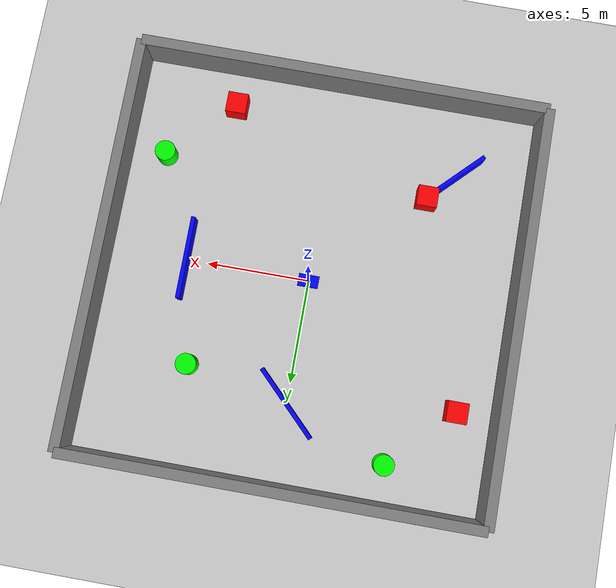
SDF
<?xml version="1.0"?>
<sdf version="1.10">
    <world name="car_world">
        <physics name="1ms" type="ignored">
            <max_step_size>0.001</max_step_size>
            <real_time_factor>1.0</real_time_factor>
        </physics>
        <plugin
            filename="gz-sim-physics-system"
            name="gz::sim::systems::Physics">
        </plugin>
        <plugin
            filename="gz-sim-user-commands-system"
            name="gz::sim::systems::UserCommands">
        </plugin>
        <plugin
            filename="gz-sim-scene-broadcaster-system"
            name="gz::sim::systems::SceneBroadcaster">
        </plugin>
        <plugin
            filename="gz-sim-imu-system"
            name="gz::sim::systems::Imu">
        </plugin>
        <plugin
            filename="gz-sim-sensors-system"
            name="gz::sim::systems::Sensors">
            <render_engine>ogre2</render_engine>
        </plugin>

        <light type="directional" name="sun">
            <cast_shadows>true</cast_shadows>
            <pose>0 0 10 0 0 0</pose>
            <diffuse>0.8 0.8 0.8 1</diffuse>
            <specular>0.2 0.2 0.2 1</specular>
            <attenuation>
                <range>1000</range>
                <constant>0.9</constant>
                <linear>0.01</linear>
                <quadratic>0.001</quadratic>
            </attenuation>
            <direction>-0.5 0.1 -0.9</direction>
        </light>

        <model name="ground_plane">
            <static>true</static>
            <link name="link">
                <collision name="collision">
                    <geometry>
                        <plane>
                            <normal>0 0 1</normal>
                        </plane>
                    </geometry>
                </collision>
                <visual name="visual">
                    <geometry>
                        <plane>
                            <normal>0 0 1</normal>
                            <size>100 100</size>
                        </plane>
                    </geometry>
                    <material>
                        <ambient>0.8 0.8 0.8 1</ambient>
                        <diffuse>0.8 0.8 0.8 1</diffuse>
                        <specular>0.8 0.8 0.8 1</specular>
                    </material>
                </visual>
            </link>
        </model>

        <model name='wall_north'>
            <static>true</static>
            <pose>10 0 1 0 0 0</pose>
            <link name='box'>
                <visual name='visual'>
                    <geometry>
                        <box>
                            <size>0.5 20.0 2.0</size>
                        </box>
                    </geometry>
                    <material>
                        <ambient>0.5 0.5 0.5 1</ambient>
                        <diffuse>0.5 0.5 0.5 1</diffuse>
                        <specular>0.5 0.5 0.5 1</specular>
                    </material>
                </visual>
                <collision name='collision'>
                    <geometry>
                        <box>
                            <size>0.5 20.0 2.0</size>
                        </box>
                    </geometry>
                </collision>
            </link>
        </model>

        <model name='wall_south'>
            <static>true</static>
            <pose>-10 0 1 0 0 0</pose>
            <link name='box'>
                <visual name='visual'>
                    <geometry>
                        <box>
                            <size>0.5 20.0 2.0</size>
                        </box>
                    </geometry>
                    <material>
                        <ambient>0.5 0.5 0.5 1</ambient>
                        <diffuse>0.5 0.5 0.5 1</diffuse>
                        <specular>0.5 0.5 0.5 1</specular>
                    </material>
                </visual>
                <collision name='collision'>
                    <geometry>
                        <box>
                            <size>0.5 20.0 2.0</size>
                        </box>
                    </geometry>
                </collision>
            </link>
        </model>

        <model name='wall_east'>
            <static>true</static>
            <pose>0 10 1 0 0 1.5707</pose>
            <link name='box'>
                <visual name='visual'>
                    <geometry>
                        <box>
                            <size>0.5 20.0 2.0</size>
                        </box>
                    </geometry>
                    <material>
                        <ambient>0.5 0.5 0.5 1</ambient>
                        <diffuse>0.5 0.5 0.5 1</diffuse>
                        <specular>0.5 0.5 0.5 1</specular>
                    </material>
                </visual>
                <collision name='collision'>
                    <geometry>
                        <box>
                            <size>0.5 20.0 2.0</size>
                        </box>
                    </geometry>
                </collision>
            </link>
        </model>

        <model name='wall_west'>
            <static>true</static>
            <pose>0 -10 1 0 0 1.5707</pose>
            <link name='box'>
                <visual name='visual'>
                    <geometry>
                        <box>
                            <size>0.5 20.0 2.0</size>
                        </box>
                    </geometry>
                    <material>
                        <ambient>0.5 0.5 0.5 1</ambient>
                        <diffuse>0.5 0.5 0.5 1</diffuse>
                        <specular>0.5 0.5 0.5 1</specular>
                    </material>
                </visual>
                <collision name='collision'>
                    <geometry>
                        <box>
                            <size>0.5 20.0 2.0</size>
                        </box>
                    </geometry>
                </collision>
            </link>
        </model>

        <!-- Cylinders -->
        <model name='cylinder_obstacle_1'>
            <static>true</static>
            <pose>5 5 0.5 0 0 0</pose>
            <link name='cylinder'>
                <visual name='visual'>
                    <geometry>
                        <cylinder>
                            <radius>0.5</radius>
                            <length>1.0</length>
                        </cylinder>
                    </geometry>
                    <material>
                        <ambient>0.0 1.0 0.0 1</ambient>
                        <diffuse>0.0 1.0 0.0 1</diffuse>
                        <specular>0.0 1.0 0.0 1</specular>
                    </material>
                </visual>
                <collision name='collision'>
                    <geometry>
                        <cylinder>
                            <radius>0.5</radius>
                            <length>1.0</length>
                        </cylinder>
                    </geometry>
                </collision>
            </link>
        </model>

        <model name='cylinder_obstacle_2'>
            <static>true</static>
            <pose>-5 8 0.5 0 0 0</pose>
            <link name='cylinder'>
                <visual name='visual'>
                    <geometry>
                        <cylinder>
                            <radius>0.5</radius>
                            <length>1.0</length>
                        </cylinder>
                    </geometry>
                    <material>
                        <ambient>0.0 1.0 0.0 1</ambient>
                        <diffuse>0.0 1.0 0.0 1</diffuse>
                        <specular>0.0 1.0 0.0 1</specular>
                    </material>
                </visual>
                <collision name='collision'>
                    <geometry>
                        <cylinder>
                            <radius>0.5</radius>
                            <length>1.0</length>
                        </cylinder>
                    </geometry>
                </collision>
            </link>
        </model>

        <model name='cylinder_obstacle_3'>
            <static>true</static>
            <pose>8 -5 0.5 0 0 0</pose>
            <link name='cylinder'>
                <visual name='visual'>
                    <geometry>
                        <cylinder>
                            <radius>0.5</radius>
                            <length>1.0</length>
                        </cylinder>
                    </geometry>
                    <material>
                        <ambient>0.0 1.0 0.0 1</ambient>
                        <diffuse>0.0 1.0 0.0 1</diffuse>
                        <specular>0.0 1.0 0.0 1</specular>
                    </material>
                </visual>
                <collision name='collision'>
                    <geometry>
                        <cylinder>
                            <radius>0.5</radius>
                            <length>1.0</length>
                        </cylinder>
                    </geometry>
                </collision>
            </link>
        </model>

        <!-- Rectangular Pillars -->
        <model name='box_obstacle_1'>
            <static>true</static>
            <pose>-5 -5 0.5 0 0 0</pose>
            <link name='box'>
                <visual name='visual'>
                    <geometry>
                        <box>
                            <size>1.0 1.0 1.0</size>
                        </box>
                    </geometry>
                    <material>
                        <ambient>1.0 0.0 0.0 1</ambient>
                        <diffuse>1.0 0.0 0.0 1</diffuse>
                        <specular>1.0 0.0 0.0 1</specular>
                    </material>
                </visual>
                <collision name='collision'>
                    <geometry>
                        <box>
                            <size>1.0 1.0 1.0</size>
                        </box>
                    </geometry>
                </collision>
            </link>
        </model>

        <model name='box_obstacle_2'>
            <static>true</static>
            <pose>5 -8 0.5 0 0 0</pose>
            <link name='box'>
                <visual name='visual'>
                    <geometry>
                        <box>
                            <size>1.0 1.0 1.0</size>
                        </box>
                    </geometry>
                    <material>
                        <ambient>1.0 0.0 0.0 1</ambient>
                        <diffuse>1.0 0.0 0.0 1</diffuse>
                        <specular>1.0 0.0 0.0 1</specular>
                    </material>
                </visual>
                <collision name='collision'>
                    <geometry>
                        <box>
                            <size>1.0 1.0 1.0</size>
                        </box>
                    </geometry>
                </collision>
            </link>
        </model>

        <model name='box_obstacle_3'>
            <static>true</static>
            <pose>-8 5 0.5 0 0 0</pose>
            <link name='box'>
                <visual name='visual'>
                    <geometry>
                        <box>
                            <size>1.0 1.0 1.0</size>
                        </box>
                    </geometry>
                    <material>
                        <ambient>1.0 0.0 0.0 1</ambient>
                        <diffuse>1.0 0.0 0.0 1</diffuse>
                        <specular>1.0 0.0 0.0 1</specular>
                    </material>
                </visual>
                <collision name='collision'>
                    <geometry>
                        <box>
                            <size>1.0 1.0 1.0</size>
                        </box>
                    </geometry>
                </collision>
            </link>
        </model>

        <!-- Internal Walls -->
        <model name='internal_wall_1'>
            <static>true</static>
            <pose>0 6 0.5 0 0 0.785</pose>
            <link name='box'>
                <visual name='visual'>
                    <geometry>
                        <box>
                            <size>0.2 4.0 1.0</size>
                        </box>
                    </geometry>
                    <material>
                        <ambient>0.0 0.0 1.0 1</ambient>
                        <diffuse>0.0 0.0 1.0 1</diffuse>
                        <specular>0.0 0.0 1.0 1</specular>
                    </material>
                </visual>
                <collision name='collision'>
                    <geometry>
                        <box>
                            <size>0.2 4.0 1.0</size>
                        </box>
                    </geometry>
                </collision>
            </link>
        </model>

        <model name='internal_wall_2'>
            <static>true</static>
            <pose>6 0 0.5 0 0 0</pose>
            <link name='box'>
                <visual name='visual'>
                    <geometry>
                        <box>
                            <size>0.2 4.0 1.0</size>
                        </box>
                    </geometry>
                    <material>
                        <ambient>0.0 0.0 1.0 1</ambient>
                        <diffuse>0.0 0.0 1.0 1</diffuse>
                        <specular>0.0 0.0 1.0 1</specular>
                    </material>
                </visual>
                <collision name='collision'>
                    <geometry>
                        <box>
                            <size>0.2 4.0 1.0</size>
                        </box>
                    </geometry>
                </collision>
            </link>
        </model>

        <model name='internal_wall_3'>
            <static>true</static>
            <pose>-6 -6 0.5 0 0 -0.785</pose>
            <link name='box'>
                <visual name='visual'>
                    <geometry>
                        <box>
                            <size>0.2 4.0 1.0</size>
                        </box>
                    </geometry>
                    <material>
                        <ambient>0.0 0.0 1.0 1</ambient>
                        <diffuse>0.0 0.0 1.0 1</diffuse>
                        <specular>0.0 0.0 1.0 1</specular>
                    </material>
                </visual>
                <collision name='collision'>
                    <geometry>
                        <box>
                            <size>0.2 4.0 1.0</size>
                        </box>
                    </geometry>
                </collision>
            </link>
        </model>

        <model name='vehicle_blue' canonical_link='base_footprint'>
            <pose>0 0 0 0 0 0</pose>

            <link name='base_footprint'>
                <pose relative_to='__model__'>0 0 0 0 0 0</pose>
                <inertial>
                    <mass>0.0001</mass>
                    <inertia>
                        <ixx>0.0001</ixx>
                        <ixy>0</ixy>
                        <ixz>0</ixz>
                        <iyy>0.0001</iyy>
                        <iyz>0</iyz>
                        <izz>0.0001</izz>
                    </inertia>
                </inertial>
            </link>

            <joint name='base_joint' type='fixed'>
                <parent>base_footprint</parent>
                <child>base_link</child>
            </joint>

            <link name='base_link'>
                <pose relative_to='base_footprint'>0 0 0.15 0 0 0</pose>
                <inertial> <!--inertial
                    properties of the link mass, inertia matix-->
                    <mass>2.2879</mass>
                    <inertia>
                        <ixx>0.095329</ixx>
                        <ixy>0</ixy>
                        <ixz>0</ixz>
                        <iyy>0.381317</iyy>
                        <iyz>0</iyz>
                        <izz>0.476646</izz>
                    </inertia>
                </inertial>
                <visual name='visual'>
                    <geometry>
                        <box>
                            <size>1.0 0.6 0.1</size>
                        </box>
                    </geometry>
                    <!--let's
                    add color to our link-->
                    <material>
                        <ambient>0.0 0.0 1.0 1</ambient>
                        <diffuse>0.0 0.0 1.0 1</diffuse>
                        <specular>0.0 0.0 1.0 1</specular>
                    </material>
                </visual>
                <collision name='collision'>
                    <geometry>
                        <box>
                            <size>1.0 0.6 0.1</size>
                        </box>
                    </geometry>
                </collision>
                <sensor name="imu_sensor" type="imu">
                    <always_on>1</always_on>
                    <update_rate>100</update_rate>
                    <visualize>true</visualize>
                    <topic>imu</topic>
                    <imu>
                        <angular_velocity>
                            <x>
                                <noise type="gaussian">
                                    <mean>0.0</mean>
                                    <stddev>2e-4</stddev>
                                </noise>
                            </x>
                            <y>
                                <noise type="gaussian">
                                    <mean>0.0</mean>
                                    <stddev>2e-4</stddev>
                                </noise>
                            </y>
                            <z>
                                <noise type="gaussian">
                                    <mean>0.0</mean>
                                    <stddev>2e-4</stddev>
                                </noise>
                            </z>
                        </angular_velocity>
                        <linear_acceleration>
                            <x>
                                <noise type="gaussian">
                                    <mean>0.0</mean>
                                    <stddev>1.7e-2</stddev>
                                </noise>
                            </x>
                            <y>
                                <noise type="gaussian">
                                    <mean>0.0</mean>
                                    <stddev>1.7e-2</stddev>
                                </noise>
                            </y>
                            <z>
                                <noise type="gaussian">
                                    <mean>0.0</mean>
                                    <stddev>1.7e-2</stddev>
                                </noise>
                            </z>
                        </linear_acceleration>
                    </imu>
                </sensor>
            </link>

            <link name='left_wheel'>
                <pose relative_to="base_link">0 0.25 -0.075 -1.5707 0 0</pose>
                <inertial>
                    <mass>1</mass>
                    <inertia>
                        <ixx>0.043333</ixx>
                        <ixy>0</ixy>
                        <ixz>0</ixz>
                        <iyy>0.043333</iyy>
                        <iyz>0</iyz>
                        <izz>0.08</izz>
                    </inertia>
                </inertial>
                <visual name='visual'>
                    <geometry>
                        <cylinder>
                            <radius>0.075</radius>
                            <length>0.1</length>
                        </cylinder>
                    </geometry>
                    <material>
                        <ambient>1.0 0.0 0.0 1</ambient>
                        <diffuse>1.0 0.0 0.0 1</diffuse>
                        <specular>1.0 0.0 0.0 1</specular>
                    </material>
                </visual>
                <collision name='collision'>
                    <geometry>
                        <cylinder>
                            <radius>0.075</radius>
                            <length>0.1</length>
                        </cylinder>
                    </geometry>
                </collision>
            </link>

            <link name='right_wheel'>
                <pose relative_to="base_link">0 -0.25 -0.075 -1.5707 0 0</pose>
                <inertial>
                    <mass>1</mass>
                    <inertia>
                        <ixx>0.043333</ixx>
                        <ixy>0</ixy>
                        <ixz>0</ixz>
                        <iyy>0.043333</iyy>
                        <iyz>0</iyz>
                        <izz>0.08</izz>
                    </inertia>
                </inertial>
                <visual name='visual'>
                    <geometry>
                        <cylinder>
                            <radius>0.075</radius>
                            <length>0.1</length>
                        </cylinder>
                    </geometry>
                    <material>
                        <ambient>1.0 0.0 0.0 1</ambient>
                        <diffuse>1.0 0.0 0.0 1</diffuse>
                        <specular>1.0 0.0 0.0 1</specular>
                    </material>
                </visual>
                <collision name='collision'>
                    <geometry>
                        <cylinder>
                            <radius>0.075</radius>
                            <length>0.1</length>
                        </cylinder>
                    </geometry>
                </collision>
            </link>

            <frame name="front_caster_frame" attached_to='base_link'>
                <pose>0.4 0 -0.075 0 0 0</pose>
            </frame>

            <frame name="rear_caster_frame" attached_to='base_link'>
                <pose>-0.4 0 -0.075 0 0 0</pose>
            </frame>

            <frame name="lidar_frame" attached_to='base_link'>
                <pose>0.4 0 0.1 0 0 0</pose>
            </frame>

            <link name='lidar'>
                <pose relative_to='lidar_frame' />
                <inertial>
                    <mass>0.1</mass>
                    <inertia>
                        <ixx>0.000166667</ixx>
                        <ixy>0</ixy>
                        <ixz>0</ixz>
                        <iyy>0.000166667</iyy>
                        <iyz>0</iyz>
                        <izz>0.000166667</izz>
                    </inertia>
                </inertial>
                <visual name='visual'>
                    <geometry>
                        <cylinder>
                            <radius>0.1</radius>
                            <length>0.1</length>
                        </cylinder>
                    </geometry>
                    <material>
                        <ambient>0.0 0.0 0.0 1</ambient>
                        <diffuse>0.0 0.0 0.0 1</diffuse>
                        <specular>0.0 0.0 0.0 1</specular>
                    </material>
                </visual>
                <collision name='collision'>
                    <geometry>
                        <cylinder>
                            <radius>0.1</radius>
                            <length>0.1</length>
                        </cylinder>
                    </geometry>
                </collision>
                <sensor name='gpu_lidar' type='gpu_lidar'>
                    <pose relative_to='lidar_frame'>0 0 0 0 0 0</pose>
                    <topic>lidar</topic>
                    <update_rate>10</update_rate>

                    <ray>
                        <scan>
                            <horizontal>
                                <samples>640</samples>
                                <resolution>1</resolution>
                                <min_angle>-1.396263</min_angle>
                                <max_angle>1.396263</max_angle>
                            </horizontal>
                            <vertical>
                                <samples>1</samples>
                                <resolution>0.01</resolution>
                                <min_angle>0</min_angle>
                                <max_angle>0</max_angle>
                            </vertical>
                        </scan>
                        <range>
                            <min>0.08</min>
                            <max>10.0</max>
                            <resolution>0.01</resolution>
                        </range>
                    </ray>
                    <always_on>1</always_on>
                    <visualize>true</visualize>
                </sensor>
            </link>

            <link name='front_caster'>
                <pose relative_to='front_caster_frame' />
                <inertial>
                    <mass>1</mass>
                    <inertia>
                        <ixx>0.009</ixx>
                        <ixy>0</ixy>
                        <ixz>0</ixz>
                        <iyy>0.009</iyy>
                        <iyz>0</iyz>
                        <izz>0.009</izz>
                    </inertia>
                </inertial>
                <visual name='visual'>
                    <geometry>
                        <sphere>
                            <radius>0.075</radius>
                        </sphere>
                    </geometry>
                    <material>
                        <ambient>0.0 1 0.0 1</ambient>
                        <diffuse>0.0 1 0.0 1</diffuse>
                        <specular>0.0 1 0.0 1</specular>
                    </material>
                </visual>
                <collision name='collision'>
                    <geometry>
                        <sphere>
                            <radius>0.075</radius>
                        </sphere>
                    </geometry>
                </collision>
            </link>

            <link name='rear_caster'>
                <pose relative_to='rear_caster_frame' />
                <inertial>
                    <mass>1</mass>
                    <inertia>
                        <ixx>0.009</ixx>
                        <ixy>0</ixy>
                        <ixz>0</ixz>
                        <iyy>0.009</iyy>
                        <iyz>0</iyz>
                        <izz>0.009</izz>
                    </inertia>
                </inertial>
                <visual name='visual'>
                    <geometry>
                        <sphere>
                            <radius>0.075</radius>
                        </sphere>
                    </geometry>
                    <material>
                        <ambient>0.0 1 0.0 1</ambient>
                        <diffuse>0.0 1 0.0 1</diffuse>
                        <specular>0.0 1 0.0 1</specular>
                    </material>
                </visual>
                <collision name='collision'>
                    <geometry>
                        <sphere>
                            <radius>0.075</radius>
                        </sphere>
                    </geometry>
                </collision>
            </link>

            <joint name='left_wheel_joint' type='revolute'>
                <pose relative_to='left_wheel' />
                <parent>base_link</parent>
                <child>left_wheel</child>
                <axis>
                    <xyz expressed_in='__model__'>0 1 0</xyz>
                    <limit>
                        <lower>-1.79769e+308</lower>    <!--negative
                        infinity-->
                        <upper>1.79769e+308</upper>     <!--positive
                        infinity-->
                    </limit>
                </axis>
            </joint>

            <joint name='right_wheel_joint' type='revolute'>
                <pose relative_to='right_wheel' />
                <parent>base_link</parent>
                <child>right_wheel</child>
                <axis>
                    <xyz expressed_in='__model__'>0 1 0</xyz>
                    <limit>
                        <lower>-1.79769e+308</lower>    <!--negative
                        infinity-->
                        <upper>1.79769e+308</upper>     <!--positive
                        infinity-->
                    </limit>
                </axis>
            </joint>

            <joint name='front_caster_wheel' type='ball'>
                <parent>base_link</parent>
                <child>front_caster</child>
            </joint>

            <joint name='rear_caster_wheel' type='ball'>
                <parent>base_link</parent>
                <child>rear_caster</child>
            </joint>

            <joint name='lidar_joint' type='fixed'>
                <parent>base_link</parent>
                <child>lidar</child>
            </joint>

            <plugin
                filename="gz-sim-diff-drive-system"
                name="gz::sim::systems::DiffDrive">
                <left_joint>left_wheel_joint</left_joint>
                <right_joint>right_wheel_joint</right_joint>
                <wheel_separation>0.5</wheel_separation>
                <wheel_radius>0.075</wheel_radius>
                <odom_publish_frequency>50</odom_publish_frequency>
                <topic>cmd_vel</topic>
                <frame_id>odom</frame_id>
                <child_frame_id>base_footprint</child_frame_id>
            </plugin>
        </model>
    </world>
</sdf>
